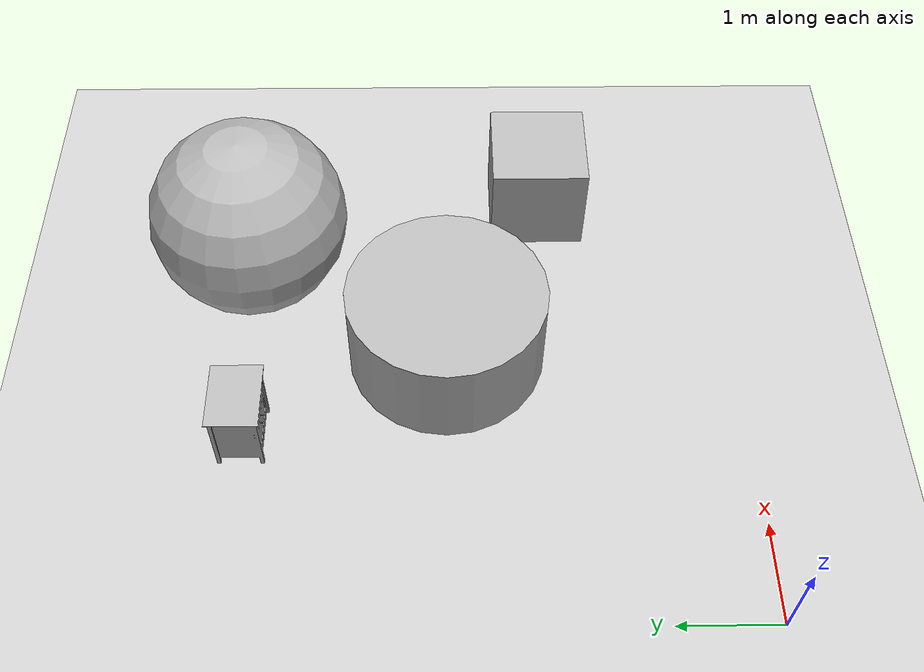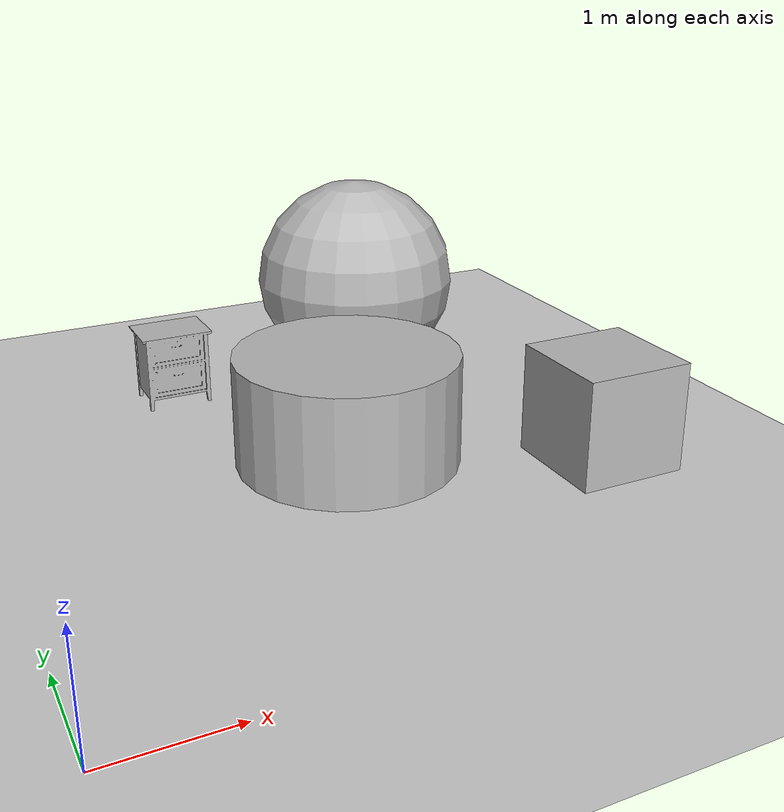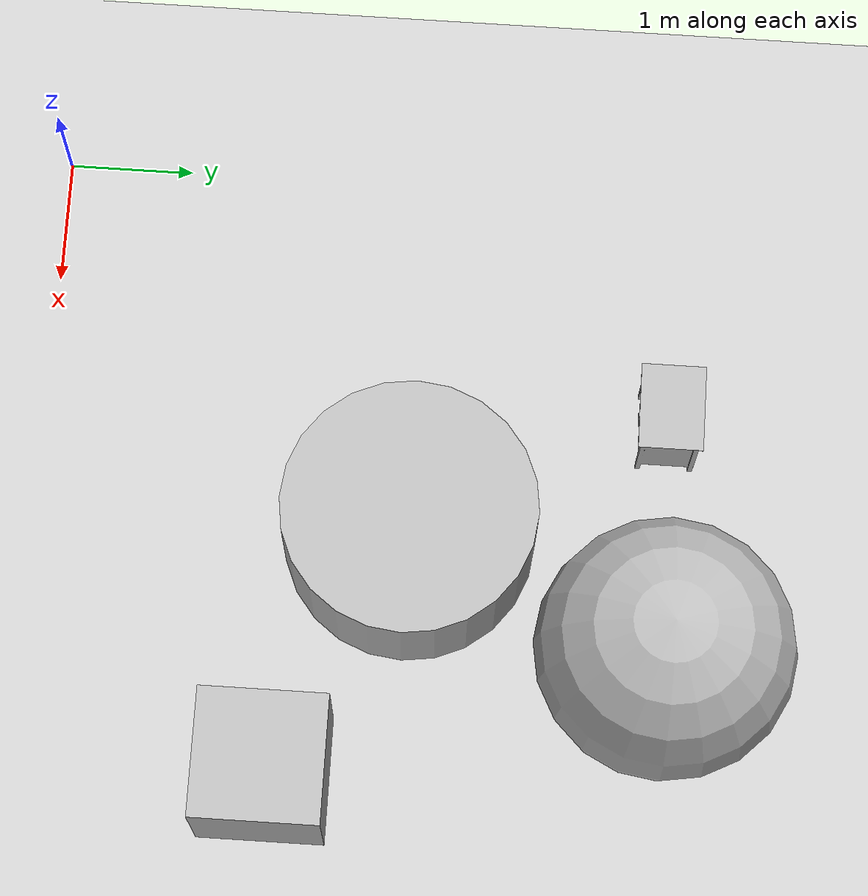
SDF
<sdf version="1.6">
 <world name="default">
  <gravity>0.0 0.0 -9.81</gravity>
  <include><uri>model://ground_plane</uri></include>
  <include><uri>model://sun</uri></include>
  <light type="point" name="point_light_1">
   <pose>2 1 2 0 0 0</pose>
   <diffuse>1 0.13 1 1</diffuse>
   <specular>.1 .1 .1 1</specular>
   <attenuation>
    <range>500</range>
    <linear>0.2</linear>
    <constant>0.95</constant>
    <quadratic>0.01</quadratic>
   </attenuation>
   <cast_shadows>false</cast_shadows>
  </light>
  <model name="box">
   <pose>5 2 0.5 0 0 0</pose>
   <static>true</static>
   <inertial>
    <mass value="5"/>
    <origin xyz="0.5 0.5 0.5"/>
    <inertia ixx="0.83" ixy="0.0" ixz="0.0" iyy="0.83" iyz="0.0" izz="0.83"/>
   </inertial>
   <link name="link">
    <collision name="collision"><geometry><box><size>1 1 1</size></box></geometry></collision>
    <visual name="visual"><geometry><box><size>1 1 1</size></box></geometry></visual>
   </link>
  </model>
  <model name="cylinder">
   <pose>3 3 0.5 0 0 0</pose>
   <static>true</static>
   <inertial>
    <mass value="5"/>
    <origin xyz="0 0 0.5"/>
    <inertia ixx="1.67" ixy="0.0" ixz="0.0" iyy="1.67" iyz="0.0" izz="2.5"/>
   </inertial>
   <link name="link">
    <collision name="collision">
     <geometry><cylinder><radius>1</radius><length>1</length></cylinder></geometry>
    </collision>
    <visual name="visual"><geometry><cylinder><radius>1</radius><length>1</length></cylinder></geometry></visual>
   </link>
  </model>
  <model name="ball">
   <pose>4 5 1 0 0 0</pose>
   <static>true</static>
   <inertial>
    <mass value="5"/>
    <origin xyz="0 0 1"/>
    <inertia ixx="2" ixy="0.0" ixz="0.0" iyy="2" iyz="0.0" izz="2"/>
   </inertial>
   <link name="link">
    <collision name="collision"><geometry><sphere><radius>1</radius></sphere></geometry></collision>
    <visual name="visual"><geometry><sphere><radius>1</radius></sphere></geometry></visual>
   </link>
  </model>
  <model name="cabinet">
   <pose>2 5 0 0 0 0</pose>
   <static>true</static>
   <link name="link">
    <collision name="collision">
     <geometry><mesh><uri>model://cabinet/meshes/model.dae</uri></mesh></geometry>
    </collision>
    <visual name="visual"><geometry><mesh><uri>model://cabinet/meshes/model.dae</uri></mesh></geometry></visual>
   </link>
  </model>
 </world>
</sdf>
